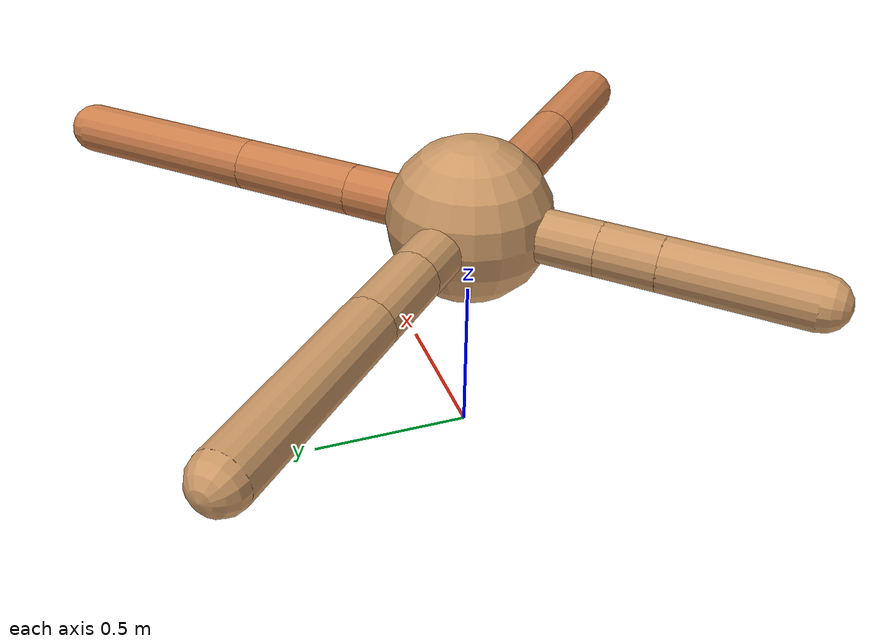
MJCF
<mujoco model="ant">
  <compiler angle="degree" coordinate="local" inertiafromgeom="true" />
  <option integrator="RK4" timestep="0.01" />
  <custom>
    <numeric data="0.0 0.0 0.55 1.0 0.0 0.0 0.0 0.0 1.0 0.0 -1.0 0.0 -1.0 0.0 1.0" name="init_qpos" />
  </custom>
  <default>
    <joint armature="1" damping="1" limited="true" />
    <geom conaffinity="0" condim="3" density="5.0" friction="1.5 0.1 0.1" margin="0.01" rgba="0.8 0.6 0.4 1" />
  </default>
  <worldbody>
    <body name="torso" pos="0 0 0.75">
      <geom name="torso_geom" pos="0 0 0" size="0.25" type="sphere" />

      <body name="front_left_leg" pos="0 0 0">
        <geom fromto="0.0 0.0 0.0 0.2746381471586796 0.2746381471586796 0.0" name="aux_1_geom" size="0.08" type="capsule" rgba=".8 .5 .3 1" />
        <body name="aux_1" pos="0.2746381471586796 0.2746381471586796 0.0">
          <joint axis="0 0 1" name="hip_1" pos="0.0 0.0 0.0" range="-40 40" type="hinge" />
          <geom fromto="0.0 0.0 0.0 0.27434603134510366 0.27434603134510366 0.0" name="left_leg_geom" size="0.08" type="capsule" rgba=".8 .5 .3 1" />
          <body pos="0.27434603134510366 0.27434603134510366 0.0" name="front_left_foot">
            <joint axis="-1 1 0" name="ankle_1" pos="0.0 0.0 0.0" range="30 100" type="hinge" />
            <geom fromto="0.0 0.0 0.0 0.43971942351510446 0.43971942351510446 0.0" name="left_ankle_geom" size="0.08" type="capsule" rgba=".8 .5 .3 1" />
          </body>
        </body>
      </body>
      <body name="front_right_leg" pos="0 0 0">
        <geom fromto="0.0 0.0 0.0 -0.2611037092929004 0.2611037092929004 0.0" name="aux_2_geom" size="0.08" type="capsule" />
        <body name="aux_2" pos="-0.2611037092929004 0.2611037092929004 0.0">
          <joint axis="0 0 1" name="hip_2" pos="0.0 0.0 0.0" range="-40 40" type="hinge" />
          <geom fromto="0.0 0.0 0.0 -0.17463327275567098 0.17463327275567098 0.0" name="right_leg_geom" size="0.08" type="capsule" />
          <body pos="-0.17463327275567098 0.17463327275567098 0.0" name="front_right_foot">
            <joint axis="1 1 0" name="ankle_2" pos="0.0 0.0 0.0" range="-100 -30" type="hinge" />
            <geom fromto="0.0 0.0 0.0 -0.45209850704721577 0.45209850704721577 0.0" name="right_ankle_geom" size="0.08" type="capsule" />
          </body>
        </body>
      </body>
      <body name="left_back_leg" pos="0 0 0">
        <geom fromto="0.0 0.0 0.0 -0.2826427206578729 -0.2826427206578729 0.0" name="aux_3_geom" size="0.08" type="capsule" />
        <body name="aux_3" pos="-0.2826427206578729 -0.2826427206578729 0.0">
          <joint axis="0 0 1" name="hip_3" pos="0.0 0.0 0.0" range="-40 40" type="hinge" />
          <geom fromto="0.0 0.0 0.0 -0.12432608104168855 -0.12432608104168855 0.0" name="back_leg_geom" size="0.08" type="capsule" />
          <body pos="-0.12432608104168855 -0.12432608104168855 0.0" name="left_back_foot">
            <joint axis="-1 1 0" name="ankle_3" pos="0.0 0.0 0.0" range="-100 -30" type="hinge" />
            <geom fromto="0.0 0.0 0.0 -0.2997301512622827 -0.2997301512622827 0.0" name="third_ankle_geom" size="0.08" type="capsule" />
          </body>
        </body>
      </body>
      <body name="right_back_leg" pos="0 0 0">
        <geom fromto="0.0 0.0 0.0 0.2233697252626847 -0.2233697252626847 0.0" name="aux_4_geom" size="0.08" type="capsule" rgba=".8 .5 .3 1" />
        <body name="aux_4" pos="0.2233697252626847 -0.2233697252626847 0.0">
          <joint axis="0 0 1" name="hip_4" pos="0.0 0.0 0.0" range="-40 40" type="hinge" />
          <geom fromto="0.0 0.0 0.0 0.24563730368983486 -0.24563730368983486 0.0" name="rightback_leg_geom" size="0.08" type="capsule" rgba=".8 .5 .3 1" />
          <body pos="0.24563730368983486 -0.24563730368983486 0.0" name="right_back_foot">
            <joint axis="1 1 0" name="ankle_4" pos="0.0 0.0 0.0" range="30 100" type="hinge" />
            <geom fromto="0.0 0.0 0.0 0.2779513371119458 -0.2779513371119458 0.0" name="fourth_ankle_geom" size="0.08" type="capsule" rgba=".8 .5 .3 1" />
          </body>
        </body>
      </body>
    </body>
  </worldbody>
  <actuator>
    <motor ctrllimited="true" ctrlrange="-1.0 1.0" joint="hip_4" gear="150" />
    <motor ctrllimited="true" ctrlrange="-1.0 1.0" joint="ankle_4" gear="150" />
    <motor ctrllimited="true" ctrlrange="-1.0 1.0" joint="hip_1" gear="150" />
    <motor ctrllimited="true" ctrlrange="-1.0 1.0" joint="ankle_1" gear="150" />
    <motor ctrllimited="true" ctrlrange="-1.0 1.0" joint="hip_2" gear="150" />
    <motor ctrllimited="true" ctrlrange="-1.0 1.0" joint="ankle_2" gear="150" />
    <motor ctrllimited="true" ctrlrange="-1.0 1.0" joint="hip_3" gear="150" />
    <motor ctrllimited="true" ctrlrange="-1.0 1.0" joint="ankle_3" gear="150" />
  </actuator>
</mujoco>
